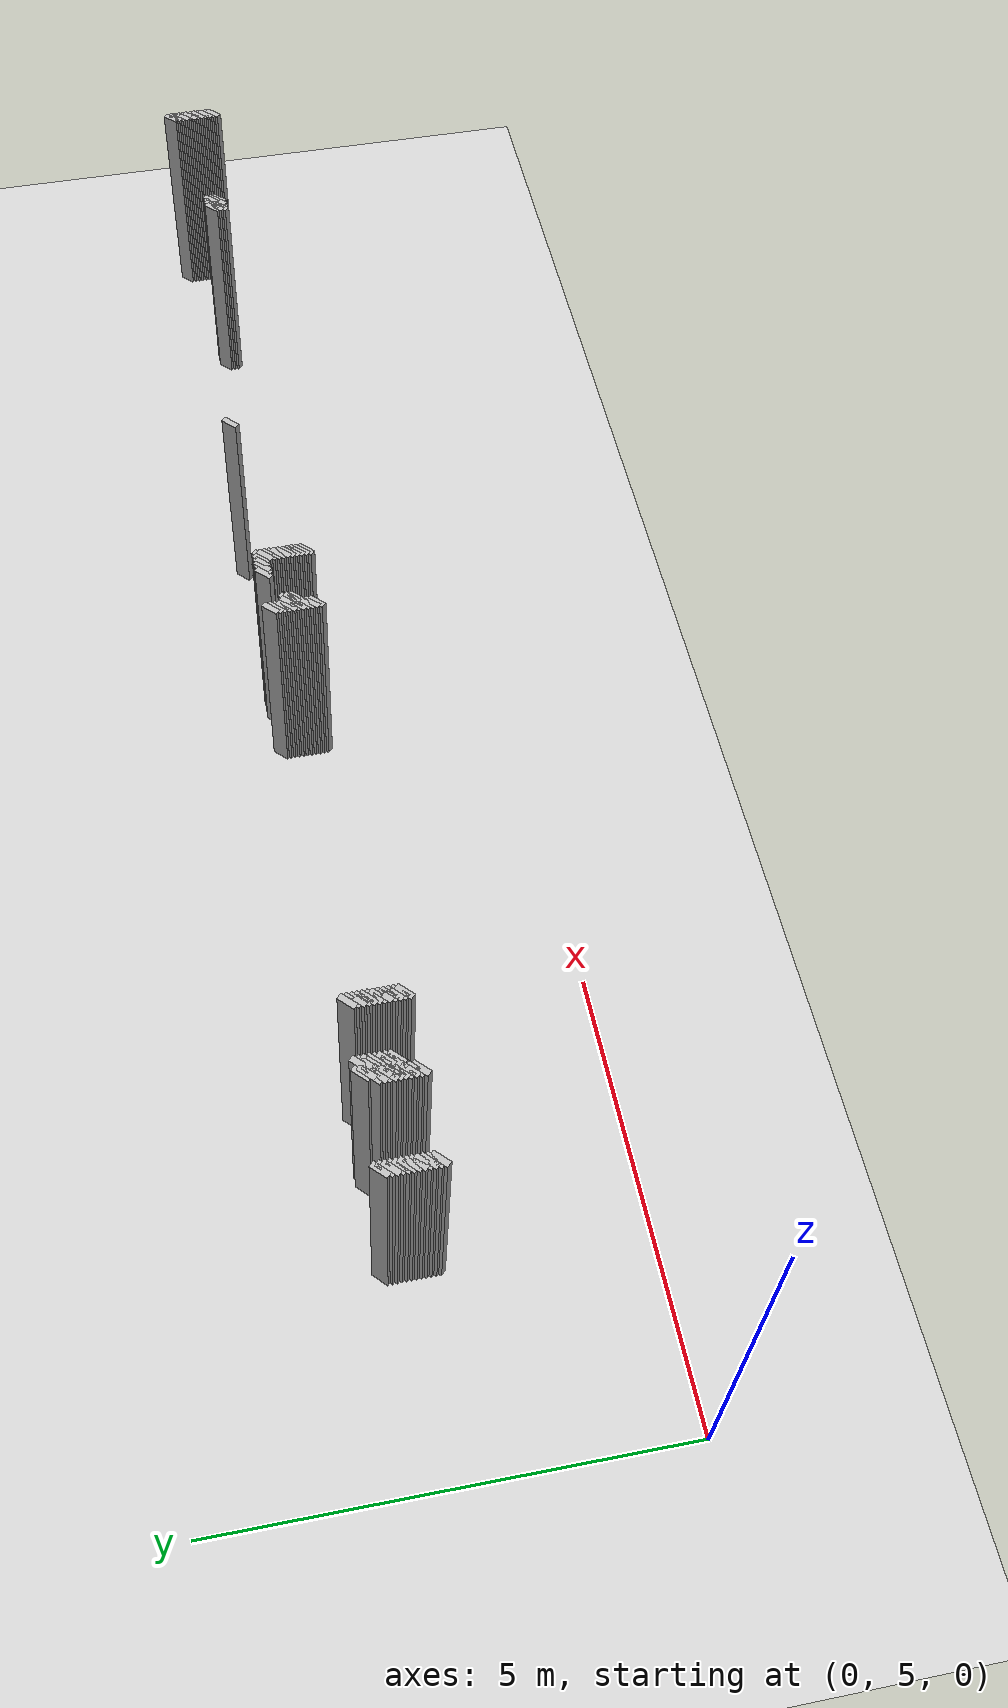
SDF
<sdf version="1.5">
 <world name="default">
  <include><uri>model://ground_plane</uri></include>
  <include><uri>model://sun</uri></include>
  <model name="grey_wall_2226">
   <static>1</static>
   <link name="link">
    <pose>11.450000000000001 7.8500000000000005  1.4 0 0 -0.7853981633974483</pose>
    <collision name="collision">
     <geometry><box><size>0.07071067811865576 .2  2.8</size></box></geometry>
    </collision>
    <visual name="visual">
     <cast_shadows>0</cast_shadows>
     <geometry><box><size>0.07071067811865576 .2  2.8</size></box></geometry>
    </visual>
   </link>
  </model>
  <model name="grey_wall_2227">
   <static>1</static>
   <link name="link">
    <pose>17.05 7.8500000000000005  1.4 0 0 -0.7853981633974838</pose>
    <collision name="collision">
     <geometry><box><size>0.07071067811865325 .2  2.8</size></box></geometry>
    </collision>
    <visual name="visual">
     <cast_shadows>0</cast_shadows>
     <geometry><box><size>0.07071067811865325 .2  2.8</size></box></geometry>
    </visual>
   </link>
  </model>
  <model name="grey_wall_2228">
   <static>1</static>
   <link name="link">
    <pose>2.15 7.800000000000001  1.4 0 0 -0.7853981633974572</pose>
    <collision name="collision">
     <geometry><box><size>0.07071067811865513 .2  2.8</size></box></geometry>
    </collision>
    <visual name="visual">
     <cast_shadows>0</cast_shadows>
     <geometry><box><size>0.07071067811865513 .2  2.8</size></box></geometry>
    </visual>
   </link>
  </model>
  <model name="grey_wall_2229">
   <static>1</static>
   <link name="link">
    <pose>3.1 7.800000000000001  1.4 0 0 -0.7853981633974572</pose>
    <collision name="collision">
     <geometry><box><size>0.07071067811865513 .2  2.8</size></box></geometry>
    </collision>
    <visual name="visual">
     <cast_shadows>0</cast_shadows>
     <geometry><box><size>0.07071067811865513 .2  2.8</size></box></geometry>
    </visual>
   </link>
  </model>
  <model name="grey_wall_2230">
   <static>1</static>
   <link name="link">
    <pose>3.2 7.800000000000001  1.4 0 0 -0.7853981633974572</pose>
    <collision name="collision">
     <geometry><box><size>0.07071067811865513 .2  2.8</size></box></geometry>
    </collision>
    <visual name="visual">
     <cast_shadows>0</cast_shadows>
     <geometry><box><size>0.07071067811865513 .2  2.8</size></box></geometry>
    </visual>
   </link>
  </model>
  <model name="grey_wall_2231">
   <static>1</static>
   <link name="link">
    <pose>3.85 7.800000000000001  1.4 0 0 -0.7853981633974572</pose>
    <collision name="collision">
     <geometry><box><size>0.07071067811865513 .2  2.8</size></box></geometry>
    </collision>
    <visual name="visual">
     <cast_shadows>0</cast_shadows>
     <geometry><box><size>0.07071067811865513 .2  2.8</size></box></geometry>
    </visual>
   </link>
  </model>
  <model name="grey_wall_2232">
   <static>1</static>
   <link name="link">
    <pose>8.65 7.800000000000001  1.4 0 0 -0.7853981633974483</pose>
    <collision name="collision">
     <geometry><box><size>0.07071067811865576 .2  2.8</size></box></geometry>
    </collision>
    <visual name="visual">
     <cast_shadows>0</cast_shadows>
     <geometry><box><size>0.07071067811865576 .2  2.8</size></box></geometry>
    </visual>
   </link>
  </model>
  <model name="grey_wall_2233">
   <static>1</static>
   <link name="link">
    <pose>9.15 7.800000000000001  1.4 0 0 -0.7853981633974483</pose>
    <collision name="collision">
     <geometry><box><size>0.07071067811865576 .2  2.8</size></box></geometry>
    </collision>
    <visual name="visual">
     <cast_shadows>0</cast_shadows>
     <geometry><box><size>0.07071067811865576 .2  2.8</size></box></geometry>
    </visual>
   </link>
  </model>
  <model name="grey_wall_2234">
   <static>1</static>
   <link name="link">
    <pose>9.200000000000001 7.800000000000001  1.4 0 0 -0.7853981633974483</pose>
    <collision name="collision">
     <geometry><box><size>0.07071067811865576 .2  2.8</size></box></geometry>
    </collision>
    <visual name="visual">
     <cast_shadows>0</cast_shadows>
     <geometry><box><size>0.07071067811865576 .2  2.8</size></box></geometry>
    </visual>
   </link>
  </model>
  <model name="grey_wall_2235">
   <static>1</static>
   <link name="link">
    <pose>9.25 7.800000000000001  1.4 0 0 -0.7853981633974483</pose>
    <collision name="collision">
     <geometry><box><size>0.07071067811865576 .2  2.8</size></box></geometry>
    </collision>
    <visual name="visual">
     <cast_shadows>0</cast_shadows>
     <geometry><box><size>0.07071067811865576 .2  2.8</size></box></geometry>
    </visual>
   </link>
  </model>
  <model name="grey_wall_2236">
   <static>1</static>
   <link name="link">
    <pose>9.3 7.800000000000001  1.4 0 0 -0.7853981633974483</pose>
    <collision name="collision">
     <geometry><box><size>0.07071067811865576 .2  2.8</size></box></geometry>
    </collision>
    <visual name="visual">
     <cast_shadows>0</cast_shadows>
     <geometry><box><size>0.07071067811865576 .2  2.8</size></box></geometry>
    </visual>
   </link>
  </model>
  <model name="grey_wall_2237">
   <static>1</static>
   <link name="link">
    <pose>9.35 7.800000000000001  1.4 0 0 -0.7853981633974483</pose>
    <collision name="collision">
     <geometry><box><size>0.07071067811865576 .2  2.8</size></box></geometry>
    </collision>
    <visual name="visual">
     <cast_shadows>0</cast_shadows>
     <geometry><box><size>0.07071067811865576 .2  2.8</size></box></geometry>
    </visual>
   </link>
  </model>
  <model name="grey_wall_2238">
   <static>1</static>
   <link name="link">
    <pose>9.4 7.800000000000001  1.4 0 0 -0.7853981633974483</pose>
    <collision name="collision">
     <geometry><box><size>0.07071067811865576 .2  2.8</size></box></geometry>
    </collision>
    <visual name="visual">
     <cast_shadows>0</cast_shadows>
     <geometry><box><size>0.07071067811865576 .2  2.8</size></box></geometry>
    </visual>
   </link>
  </model>
  <model name="grey_wall_2239">
   <static>1</static>
   <link name="link">
    <pose>17.05 7.800000000000001  1.4 0 0 -0.7853981633974838</pose>
    <collision name="collision">
     <geometry><box><size>0.07071067811865325 .2  2.8</size></box></geometry>
    </collision>
    <visual name="visual">
     <cast_shadows>0</cast_shadows>
     <geometry><box><size>0.07071067811865325 .2  2.8</size></box></geometry>
    </visual>
   </link>
  </model>
  <model name="grey_wall_2240">
   <static>1</static>
   <link name="link">
    <pose>2.15 7.75  1.4 0 0 -0.7853981633974572</pose>
    <collision name="collision">
     <geometry><box><size>0.07071067811865513 .2  2.8</size></box></geometry>
    </collision>
    <visual name="visual">
     <cast_shadows>0</cast_shadows>
     <geometry><box><size>0.07071067811865513 .2  2.8</size></box></geometry>
    </visual>
   </link>
  </model>
  <model name="grey_wall_2241">
   <static>1</static>
   <link name="link">
    <pose>3.1 7.75  1.4 0 0 -0.7853981633974572</pose>
    <collision name="collision">
     <geometry><box><size>0.07071067811865513 .2  2.8</size></box></geometry>
    </collision>
    <visual name="visual">
     <cast_shadows>0</cast_shadows>
     <geometry><box><size>0.07071067811865513 .2  2.8</size></box></geometry>
    </visual>
   </link>
  </model>
  <model name="grey_wall_2242">
   <static>1</static>
   <link name="link">
    <pose>3.2 7.75  1.4 0 0 -0.7853981633974572</pose>
    <collision name="collision">
     <geometry><box><size>0.07071067811865513 .2  2.8</size></box></geometry>
    </collision>
    <visual name="visual">
     <cast_shadows>0</cast_shadows>
     <geometry><box><size>0.07071067811865513 .2  2.8</size></box></geometry>
    </visual>
   </link>
  </model>
  <model name="grey_wall_2243">
   <static>1</static>
   <link name="link">
    <pose>3.85 7.75  1.4 0 0 -0.7853981633974572</pose>
    <collision name="collision">
     <geometry><box><size>0.07071067811865513 .2  2.8</size></box></geometry>
    </collision>
    <visual name="visual">
     <cast_shadows>0</cast_shadows>
     <geometry><box><size>0.07071067811865513 .2  2.8</size></box></geometry>
    </visual>
   </link>
  </model>
  <model name="grey_wall_2244">
   <static>1</static>
   <link name="link">
    <pose>8.65 7.75  1.4 0 0 -0.7853981633974483</pose>
    <collision name="collision">
     <geometry><box><size>0.07071067811865576 .2  2.8</size></box></geometry>
    </collision>
    <visual name="visual">
     <cast_shadows>0</cast_shadows>
     <geometry><box><size>0.07071067811865576 .2  2.8</size></box></geometry>
    </visual>
   </link>
  </model>
  <model name="grey_wall_2245">
   <static>1</static>
   <link name="link">
    <pose>9.4 7.75  1.4 0 0 -0.7853981633974483</pose>
    <collision name="collision">
     <geometry><box><size>0.07071067811865576 .2  2.8</size></box></geometry>
    </collision>
    <visual name="visual">
     <cast_shadows>0</cast_shadows>
     <geometry><box><size>0.07071067811865576 .2  2.8</size></box></geometry>
    </visual>
   </link>
  </model>
  <model name="grey_wall_2246">
   <static>1</static>
   <link name="link">
    <pose>17.05 7.75  1.4 0 0 -0.7853981633974838</pose>
    <collision name="collision">
     <geometry><box><size>0.07071067811865325 .2  2.8</size></box></geometry>
    </collision>
    <visual name="visual">
     <cast_shadows>0</cast_shadows>
     <geometry><box><size>0.07071067811865325 .2  2.8</size></box></geometry>
    </visual>
   </link>
  </model>
  <model name="grey_wall_2247">
   <static>1</static>
   <link name="link">
    <pose>2.15 7.7  1.4 0 0 -0.7853981633974572</pose>
    <collision name="collision">
     <geometry><box><size>0.07071067811865513 .2  2.8</size></box></geometry>
    </collision>
    <visual name="visual">
     <cast_shadows>0</cast_shadows>
     <geometry><box><size>0.07071067811865513 .2  2.8</size></box></geometry>
    </visual>
   </link>
  </model>
  <model name="grey_wall_2248">
   <static>1</static>
   <link name="link">
    <pose>3.0500000000000003 7.7  1.4 0 0 -0.7853981633974572</pose>
    <collision name="collision">
     <geometry><box><size>0.07071067811865513 .2  2.8</size></box></geometry>
    </collision>
    <visual name="visual">
     <cast_shadows>0</cast_shadows>
     <geometry><box><size>0.07071067811865513 .2  2.8</size></box></geometry>
    </visual>
   </link>
  </model>
  <model name="grey_wall_2249">
   <static>1</static>
   <link name="link">
    <pose>3.1 7.7  1.4 0 0 -0.7853981633974572</pose>
    <collision name="collision">
     <geometry><box><size>0.07071067811865513 .2  2.8</size></box></geometry>
    </collision>
    <visual name="visual">
     <cast_shadows>0</cast_shadows>
     <geometry><box><size>0.07071067811865513 .2  2.8</size></box></geometry>
    </visual>
   </link>
  </model>
  <model name="grey_wall_2250">
   <static>1</static>
   <link name="link">
    <pose>3.2 7.7  1.4 0 0 -0.7853981633974572</pose>
    <collision name="collision">
     <geometry><box><size>0.07071067811865513 .2  2.8</size></box></geometry>
    </collision>
    <visual name="visual">
     <cast_shadows>0</cast_shadows>
     <geometry><box><size>0.07071067811865513 .2  2.8</size></box></geometry>
    </visual>
   </link>
  </model>
  <model name="grey_wall_2251">
   <static>1</static>
   <link name="link">
    <pose>3.85 7.7  1.4 0 0 -0.7853981633974572</pose>
    <collision name="collision">
     <geometry><box><size>0.07071067811865513 .2  2.8</size></box></geometry>
    </collision>
    <visual name="visual">
     <cast_shadows>0</cast_shadows>
     <geometry><box><size>0.07071067811865513 .2  2.8</size></box></geometry>
    </visual>
   </link>
  </model>
  <model name="grey_wall_2252">
   <static>1</static>
   <link name="link">
    <pose>8.65 7.7  1.4 0 0 -0.7853981633974483</pose>
    <collision name="collision">
     <geometry><box><size>0.07071067811865576 .2  2.8</size></box></geometry>
    </collision>
    <visual name="visual">
     <cast_shadows>0</cast_shadows>
     <geometry><box><size>0.07071067811865576 .2  2.8</size></box></geometry>
    </visual>
   </link>
  </model>
  <model name="grey_wall_2253">
   <static>1</static>
   <link name="link">
    <pose>9.4 7.7  1.4 0 0 -0.7853981633974483</pose>
    <collision name="collision">
     <geometry><box><size>0.07071067811865576 .2  2.8</size></box></geometry>
    </collision>
    <visual name="visual">
     <cast_shadows>0</cast_shadows>
     <geometry><box><size>0.07071067811865576 .2  2.8</size></box></geometry>
    </visual>
   </link>
  </model>
  <model name="grey_wall_2254">
   <static>1</static>
   <link name="link">
    <pose>17.05 7.7  1.4 0 0 -0.7853981633974838</pose>
    <collision name="collision">
     <geometry><box><size>0.07071067811865325 .2  2.8</size></box></geometry>
    </collision>
    <visual name="visual">
     <cast_shadows>0</cast_shadows>
     <geometry><box><size>0.07071067811865325 .2  2.8</size></box></geometry>
    </visual>
   </link>
  </model>
  <model name="grey_wall_2255">
   <static>1</static>
   <link name="link">
    <pose>2.15 7.65  1.4 0 0 -0.7853981633974572</pose>
    <collision name="collision">
     <geometry><box><size>0.07071067811865513 .2  2.8</size></box></geometry>
    </collision>
    <visual name="visual">
     <cast_shadows>0</cast_shadows>
     <geometry><box><size>0.07071067811865513 .2  2.8</size></box></geometry>
    </visual>
   </link>
  </model>
  <model name="grey_wall_2256">
   <static>1</static>
   <link name="link">
    <pose>3.0500000000000003 7.65  1.4 0 0 -0.7853981633974572</pose>
    <collision name="collision">
     <geometry><box><size>0.07071067811865513 .2  2.8</size></box></geometry>
    </collision>
    <visual name="visual">
     <cast_shadows>0</cast_shadows>
     <geometry><box><size>0.07071067811865513 .2  2.8</size></box></geometry>
    </visual>
   </link>
  </model>
  <model name="grey_wall_2257">
   <static>1</static>
   <link name="link">
    <pose>3.1 7.65  1.4 0 0 -0.7853981633974572</pose>
    <collision name="collision">
     <geometry><box><size>0.07071067811865513 .2  2.8</size></box></geometry>
    </collision>
    <visual name="visual">
     <cast_shadows>0</cast_shadows>
     <geometry><box><size>0.07071067811865513 .2  2.8</size></box></geometry>
    </visual>
   </link>
  </model>
  <model name="grey_wall_2258">
   <static>1</static>
   <link name="link">
    <pose>3.2 7.65  1.4 0 0 -0.7853981633974572</pose>
    <collision name="collision">
     <geometry><box><size>0.07071067811865513 .2  2.8</size></box></geometry>
    </collision>
    <visual name="visual">
     <cast_shadows>0</cast_shadows>
     <geometry><box><size>0.07071067811865513 .2  2.8</size></box></geometry>
    </visual>
   </link>
  </model>
  <model name="grey_wall_2259">
   <static>1</static>
   <link name="link">
    <pose>3.85 7.65  1.4 0 0 -0.7853981633974572</pose>
    <collision name="collision">
     <geometry><box><size>0.07071067811865513 .2  2.8</size></box></geometry>
    </collision>
    <visual name="visual">
     <cast_shadows>0</cast_shadows>
     <geometry><box><size>0.07071067811865513 .2  2.8</size></box></geometry>
    </visual>
   </link>
  </model>
  <model name="grey_wall_2260">
   <static>1</static>
   <link name="link">
    <pose>8.65 7.65  1.4 0 0 -0.7853981633974483</pose>
    <collision name="collision">
     <geometry><box><size>0.07071067811865576 .2  2.8</size></box></geometry>
    </collision>
    <visual name="visual">
     <cast_shadows>0</cast_shadows>
     <geometry><box><size>0.07071067811865576 .2  2.8</size></box></geometry>
    </visual>
   </link>
  </model>
  <model name="grey_wall_2261">
   <static>1</static>
   <link name="link">
    <pose>9.4 7.65  1.4 0 0 -0.7853981633974483</pose>
    <collision name="collision">
     <geometry><box><size>0.07071067811865576 .2  2.8</size></box></geometry>
    </collision>
    <visual name="visual">
     <cast_shadows>0</cast_shadows>
     <geometry><box><size>0.07071067811865576 .2  2.8</size></box></geometry>
    </visual>
   </link>
  </model>
  <model name="grey_wall_2262">
   <static>1</static>
   <link name="link">
    <pose>17.05 7.65  1.4 0 0 -0.7853981633974838</pose>
    <collision name="collision">
     <geometry><box><size>0.07071067811865325 .2  2.8</size></box></geometry>
    </collision>
    <visual name="visual">
     <cast_shadows>0</cast_shadows>
     <geometry><box><size>0.07071067811865325 .2  2.8</size></box></geometry>
    </visual>
   </link>
  </model>
  <model name="grey_wall_2263">
   <static>1</static>
   <link name="link">
    <pose>2.15 7.6000000000000005  1.4 0 0 -0.7853981633974572</pose>
    <collision name="collision">
     <geometry><box><size>0.07071067811865513 .2  2.8</size></box></geometry>
    </collision>
    <visual name="visual">
     <cast_shadows>0</cast_shadows>
     <geometry><box><size>0.07071067811865513 .2  2.8</size></box></geometry>
    </visual>
   </link>
  </model>
  <model name="grey_wall_2264">
   <static>1</static>
   <link name="link">
    <pose>3.0500000000000003 7.6000000000000005  1.4 0 0 -0.7853981633974572</pose>
    <collision name="collision">
     <geometry><box><size>0.07071067811865513 .2  2.8</size></box></geometry>
    </collision>
    <visual name="visual">
     <cast_shadows>0</cast_shadows>
     <geometry><box><size>0.07071067811865513 .2  2.8</size></box></geometry>
    </visual>
   </link>
  </model>
  <model name="grey_wall_2265">
   <static>1</static>
   <link name="link">
    <pose>3.1 7.6000000000000005  1.4 0 0 -0.7853981633974572</pose>
    <collision name="collision">
     <geometry><box><size>0.07071067811865513 .2  2.8</size></box></geometry>
    </collision>
    <visual name="visual">
     <cast_shadows>0</cast_shadows>
     <geometry><box><size>0.07071067811865513 .2  2.8</size></box></geometry>
    </visual>
   </link>
  </model>
  <model name="grey_wall_2266">
   <static>1</static>
   <link name="link">
    <pose>3.2 7.6000000000000005  1.4 0 0 -0.7853981633974572</pose>
    <collision name="collision">
     <geometry><box><size>0.07071067811865513 .2  2.8</size></box></geometry>
    </collision>
    <visual name="visual">
     <cast_shadows>0</cast_shadows>
     <geometry><box><size>0.07071067811865513 .2  2.8</size></box></geometry>
    </visual>
   </link>
  </model>
  <model name="grey_wall_2267">
   <static>1</static>
   <link name="link">
    <pose>3.85 7.6000000000000005  1.4 0 0 -0.7853981633974572</pose>
    <collision name="collision">
     <geometry><box><size>0.07071067811865513 .2  2.8</size></box></geometry>
    </collision>
    <visual name="visual">
     <cast_shadows>0</cast_shadows>
     <geometry><box><size>0.07071067811865513 .2  2.8</size></box></geometry>
    </visual>
   </link>
  </model>
  <model name="grey_wall_2268">
   <static>1</static>
   <link name="link">
    <pose>8.65 7.6000000000000005  1.4 0 0 -0.7853981633974483</pose>
    <collision name="collision">
     <geometry><box><size>0.07071067811865576 .2  2.8</size></box></geometry>
    </collision>
    <visual name="visual">
     <cast_shadows>0</cast_shadows>
     <geometry><box><size>0.07071067811865576 .2  2.8</size></box></geometry>
    </visual>
   </link>
  </model>
  <model name="grey_wall_2269">
   <static>1</static>
   <link name="link">
    <pose>8.700000000000001 7.6000000000000005  1.4 0 0 -0.7853981633974483</pose>
    <collision name="collision">
     <geometry><box><size>0.07071067811865576 .2  2.8</size></box></geometry>
    </collision>
    <visual name="visual">
     <cast_shadows>0</cast_shadows>
     <geometry><box><size>0.07071067811865576 .2  2.8</size></box></geometry>
    </visual>
   </link>
  </model>
  <model name="grey_wall_2270">
   <static>1</static>
   <link name="link">
    <pose>8.75 7.6000000000000005  1.4 0 0 -0.7853981633974483</pose>
    <collision name="collision">
     <geometry><box><size>0.07071067811865576 .2  2.8</size></box></geometry>
    </collision>
    <visual name="visual">
     <cast_shadows>0</cast_shadows>
     <geometry><box><size>0.07071067811865576 .2  2.8</size></box></geometry>
    </visual>
   </link>
  </model>
  <model name="grey_wall_2271">
   <static>1</static>
   <link name="link">
    <pose>9.4 7.6000000000000005  1.4 0 0 -0.7853981633974483</pose>
    <collision name="collision">
     <geometry><box><size>0.07071067811865576 .2  2.8</size></box></geometry>
    </collision>
    <visual name="visual">
     <cast_shadows>0</cast_shadows>
     <geometry><box><size>0.07071067811865576 .2  2.8</size></box></geometry>
    </visual>
   </link>
  </model>
  <model name="grey_wall_2272">
   <static>1</static>
   <link name="link">
    <pose>17.05 7.6000000000000005  1.4 0 0 -0.7853981633974838</pose>
    <collision name="collision">
     <geometry><box><size>0.07071067811865325 .2  2.8</size></box></geometry>
    </collision>
    <visual name="visual">
     <cast_shadows>0</cast_shadows>
     <geometry><box><size>0.07071067811865325 .2  2.8</size></box></geometry>
    </visual>
   </link>
  </model>
  <model name="grey_wall_2273">
   <static>1</static>
   <link name="link">
    <pose>2.15 7.550000000000001  1.4 0 0 -0.7853981633974572</pose>
    <collision name="collision">
     <geometry><box><size>0.07071067811865513 .2  2.8</size></box></geometry>
    </collision>
    <visual name="visual">
     <cast_shadows>0</cast_shadows>
     <geometry><box><size>0.07071067811865513 .2  2.8</size></box></geometry>
    </visual>
   </link>
  </model>
  <model name="grey_wall_2274">
   <static>1</static>
   <link name="link">
    <pose>3.0500000000000003 7.550000000000001  1.4 0 0 -0.7853981633974572</pose>
    <collision name="collision">
     <geometry><box><size>0.07071067811865513 .2  2.8</size></box></geometry>
    </collision>
    <visual name="visual">
     <cast_shadows>0</cast_shadows>
     <geometry><box><size>0.07071067811865513 .2  2.8</size></box></geometry>
    </visual>
   </link>
  </model>
  <model name="grey_wall_2275">
   <static>1</static>
   <link name="link">
    <pose>3.1 7.550000000000001  1.4 0 0 -0.7853981633974572</pose>
    <collision name="collision">
     <geometry><box><size>0.07071067811865513 .2  2.8</size></box></geometry>
    </collision>
    <visual name="visual">
     <cast_shadows>0</cast_shadows>
     <geometry><box><size>0.07071067811865513 .2  2.8</size></box></geometry>
    </visual>
   </link>
  </model>
  <model name="grey_wall_2276">
   <static>1</static>
   <link name="link">
    <pose>3.2 7.550000000000001  1.4 0 0 -0.7853981633974572</pose>
    <collision name="collision">
     <geometry><box><size>0.07071067811865513 .2  2.8</size></box></geometry>
    </collision>
    <visual name="visual">
     <cast_shadows>0</cast_shadows>
     <geometry><box><size>0.07071067811865513 .2  2.8</size></box></geometry>
    </visual>
   </link>
  </model>
  <model name="grey_wall_2277">
   <static>1</static>
   <link name="link">
    <pose>3.85 7.550000000000001  1.4 0 0 -0.7853981633974572</pose>
    <collision name="collision">
     <geometry><box><size>0.07071067811865513 .2  2.8</size></box></geometry>
    </collision>
    <visual name="visual">
     <cast_shadows>0</cast_shadows>
     <geometry><box><size>0.07071067811865513 .2  2.8</size></box></geometry>
    </visual>
   </link>
  </model>
  <model name="grey_wall_2278">
   <static>1</static>
   <link name="link">
    <pose>8.65 7.550000000000001  1.4 0 0 -0.7853981633974483</pose>
    <collision name="collision">
     <geometry><box><size>0.07071067811865576 .2  2.8</size></box></geometry>
    </collision>
    <visual name="visual">
     <cast_shadows>0</cast_shadows>
     <geometry><box><size>0.07071067811865576 .2  2.8</size></box></geometry>
    </visual>
   </link>
  </model>
  <model name="grey_wall_2279">
   <static>1</static>
   <link name="link">
    <pose>8.75 7.550000000000001  1.4 0 0 -0.7853981633974483</pose>
    <collision name="collision">
     <geometry><box><size>0.07071067811865576 .2  2.8</size></box></geometry>
    </collision>
    <visual name="visual">
     <cast_shadows>0</cast_shadows>
     <geometry><box><size>0.07071067811865576 .2  2.8</size></box></geometry>
    </visual>
   </link>
  </model>
  <model name="grey_wall_2280">
   <static>1</static>
   <link name="link">
    <pose>9.4 7.550000000000001  1.4 0 0 -0.7853981633974483</pose>
    <collision name="collision">
     <geometry><box><size>0.07071067811865576 .2  2.8</size></box></geometry>
    </collision>
    <visual name="visual">
     <cast_shadows>0</cast_shadows>
     <geometry><box><size>0.07071067811865576 .2  2.8</size></box></geometry>
    </visual>
   </link>
  </model>
  <model name="grey_wall_2281">
   <static>1</static>
   <link name="link">
    <pose>15.200000000000001 7.550000000000001  1.4 0 0 -0.7853981633974483</pose>
    <collision name="collision">
     <geometry><box><size>0.07071067811865576 .2  2.8</size></box></geometry>
    </collision>
    <visual name="visual">
     <cast_shadows>0</cast_shadows>
     <geometry><box><size>0.07071067811865576 .2  2.8</size></box></geometry>
    </visual>
   </link>
  </model>
  <model name="grey_wall_2282">
   <static>1</static>
   <link name="link">
    <pose>15.25 7.550000000000001  1.4 0 0 -0.7853981633974483</pose>
    <collision name="collision">
     <geometry><box><size>0.07071067811865576 .2  2.8</size></box></geometry>
    </collision>
    <visual name="visual">
     <cast_shadows>0</cast_shadows>
     <geometry><box><size>0.07071067811865576 .2  2.8</size></box></geometry>
    </visual>
   </link>
  </model>
  <model name="grey_wall_2283">
   <static>1</static>
   <link name="link">
    <pose>15.3 7.550000000000001  1.4 0 0 -0.7853981633974483</pose>
    <collision name="collision">
     <geometry><box><size>0.07071067811865576 .2  2.8</size></box></geometry>
    </collision>
    <visual name="visual">
     <cast_shadows>0</cast_shadows>
     <geometry><box><size>0.07071067811865576 .2  2.8</size></box></geometry>
    </visual>
   </link>
  </model>
  <model name="grey_wall_2284">
   <static>1</static>
   <link name="link">
    <pose>15.350000000000001 7.550000000000001  1.4 0 0 -0.7853981633974483</pose>
    <collision name="collision">
     <geometry><box><size>0.07071067811865576 .2  2.8</size></box></geometry>
    </collision>
    <visual name="visual">
     <cast_shadows>0</cast_shadows>
     <geometry><box><size>0.07071067811865576 .2  2.8</size></box></geometry>
    </visual>
   </link>
  </model>
  <model name="grey_wall_2285">
   <static>1</static>
   <link name="link">
    <pose>17.05 7.550000000000001  1.4 0 0 -0.7853981633974838</pose>
    <collision name="collision">
     <geometry><box><size>0.07071067811865325 .2  2.8</size></box></geometry>
    </collision>
    <visual name="visual">
     <cast_shadows>0</cast_shadows>
     <geometry><box><size>0.07071067811865325 .2  2.8</size></box></geometry>
    </visual>
   </link>
  </model>
  <model name="grey_wall_2286">
   <static>1</static>
   <link name="link">
    <pose>2.15 7.5  1.4 0 0 -0.7853981633974572</pose>
    <collision name="collision">
     <geometry><box><size>0.07071067811865513 .2  2.8</size></box></geometry>
    </collision>
    <visual name="visual">
     <cast_shadows>0</cast_shadows>
     <geometry><box><size>0.07071067811865513 .2  2.8</size></box></geometry>
    </visual>
   </link>
  </model>
  <model name="grey_wall_2287">
   <static>1</static>
   <link name="link">
    <pose>3.0500000000000003 7.5  1.4 0 0 -0.7853981633974572</pose>
    <collision name="collision">
     <geometry><box><size>0.07071067811865513 .2  2.8</size></box></geometry>
    </collision>
    <visual name="visual">
     <cast_shadows>0</cast_shadows>
     <geometry><box><size>0.07071067811865513 .2  2.8</size></box></geometry>
    </visual>
   </link>
  </model>
  <model name="grey_wall_2288">
   <static>1</static>
   <link name="link">
    <pose>3.1 7.5  1.4 0 0 -0.7853981633974572</pose>
    <collision name="collision">
     <geometry><box><size>0.07071067811865513 .2  2.8</size></box></geometry>
    </collision>
    <visual name="visual">
     <cast_shadows>0</cast_shadows>
     <geometry><box><size>0.07071067811865513 .2  2.8</size></box></geometry>
    </visual>
   </link>
  </model>
  <model name="grey_wall_2289">
   <static>1</static>
   <link name="link">
    <pose>3.2 7.5  1.4 0 0 -0.7853981633974572</pose>
    <collision name="collision">
     <geometry><box><size>0.07071067811865513 .2  2.8</size></box></geometry>
    </collision>
    <visual name="visual">
     <cast_shadows>0</cast_shadows>
     <geometry><box><size>0.07071067811865513 .2  2.8</size></box></geometry>
    </visual>
   </link>
  </model>
  <model name="grey_wall_2290">
   <static>1</static>
   <link name="link">
    <pose>3.85 7.5  1.4 0 0 -0.7853981633974572</pose>
    <collision name="collision">
     <geometry><box><size>0.07071067811865513 .2  2.8</size></box></geometry>
    </collision>
    <visual name="visual">
     <cast_shadows>0</cast_shadows>
     <geometry><box><size>0.07071067811865513 .2  2.8</size></box></geometry>
    </visual>
   </link>
  </model>
  <model name="grey_wall_2291">
   <static>1</static>
   <link name="link">
    <pose>8.65 7.5  1.4 0 0 -0.7853981633974483</pose>
    <collision name="collision">
     <geometry><box><size>0.07071067811865576 .2  2.8</size></box></geometry>
    </collision>
    <visual name="visual">
     <cast_shadows>0</cast_shadows>
     <geometry><box><size>0.07071067811865576 .2  2.8</size></box></geometry>
    </visual>
   </link>
  </model>
  <model name="grey_wall_2292">
   <static>1</static>
   <link name="link">
    <pose>8.700000000000001 7.5  1.4 0 0 -0.7853981633974483</pose>
    <collision name="collision">
     <geometry><box><size>0.07071067811865576 .2  2.8</size></box></geometry>
    </collision>
    <visual name="visual">
     <cast_shadows>0</cast_shadows>
     <geometry><box><size>0.07071067811865576 .2  2.8</size></box></geometry>
    </visual>
   </link>
  </model>
  <model name="grey_wall_2293">
   <static>1</static>
   <link name="link">
    <pose>8.75 7.5  1.4 0 0 -0.7853981633974483</pose>
    <collision name="collision">
     <geometry><box><size>0.07071067811865576 .2  2.8</size></box></geometry>
    </collision>
    <visual name="visual">
     <cast_shadows>0</cast_shadows>
     <geometry><box><size>0.07071067811865576 .2  2.8</size></box></geometry>
    </visual>
   </link>
  </model>
  <model name="grey_wall_2294">
   <static>1</static>
   <link name="link">
    <pose>9.4 7.5  1.4 0 0 -0.7853981633974483</pose>
    <collision name="collision">
     <geometry><box><size>0.07071067811865576 .2  2.8</size></box></geometry>
    </collision>
    <visual name="visual">
     <cast_shadows>0</cast_shadows>
     <geometry><box><size>0.07071067811865576 .2  2.8</size></box></geometry>
    </visual>
   </link>
  </model>
  <model name="grey_wall_2295">
   <static>1</static>
   <link name="link">
    <pose>15.200000000000001 7.5  1.4 0 0 -0.7853981633974483</pose>
    <collision name="collision">
     <geometry><box><size>0.07071067811865576 .2  2.8</size></box></geometry>
    </collision>
    <visual name="visual">
     <cast_shadows>0</cast_shadows>
     <geometry><box><size>0.07071067811865576 .2  2.8</size></box></geometry>
    </visual>
   </link>
  </model>
  <model name="grey_wall_2296">
   <static>1</static>
   <link name="link">
    <pose>15.350000000000001 7.5  1.4 0 0 -0.7853981633974483</pose>
    <collision name="collision">
     <geometry><box><size>0.07071067811865576 .2  2.8</size></box></geometry>
    </collision>
    <visual name="visual">
     <cast_shadows>0</cast_shadows>
     <geometry><box><size>0.07071067811865576 .2  2.8</size></box></geometry>
    </visual>
   </link>
  </model>
  <model name="grey_wall_2297">
   <static>1</static>
   <link name="link">
    <pose>17.05 7.5  1.4 0 0 -0.7853981633974838</pose>
    <collision name="collision">
     <geometry><box><size>0.07071067811865325 .2  2.8</size></box></geometry>
    </collision>
    <visual name="visual">
     <cast_shadows>0</cast_shadows>
     <geometry><box><size>0.07071067811865325 .2  2.8</size></box></geometry>
    </visual>
   </link>
  </model>
  <model name="grey_wall_2298">
   <static>1</static>
   <link name="link">
    <pose>2.15 7.45  1.4 0 0 -0.7853981633974572</pose>
    <collision name="collision">
     <geometry><box><size>0.07071067811865513 .2  2.8</size></box></geometry>
    </collision>
    <visual name="visual">
     <cast_shadows>0</cast_shadows>
     <geometry><box><size>0.07071067811865513 .2  2.8</size></box></geometry>
    </visual>
   </link>
  </model>
  <model name="grey_wall_2299">
   <static>1</static>
   <link name="link">
    <pose>3.0500000000000003 7.45  1.4 0 0 -0.7853981633974572</pose>
    <collision name="collision">
     <geometry><box><size>0.07071067811865513 .2  2.8</size></box></geometry>
    </collision>
    <visual name="visual">
     <cast_shadows>0</cast_shadows>
     <geometry><box><size>0.07071067811865513 .2  2.8</size></box></geometry>
    </visual>
   </link>
  </model>
  <model name="grey_wall_2300">
   <static>1</static>
   <link name="link">
    <pose>3.1 7.45  1.4 0 0 -0.7853981633974572</pose>
    <collision name="collision">
     <geometry><box><size>0.07071067811865513 .2  2.8</size></box></geometry>
    </collision>
    <visual name="visual">
     <cast_shadows>0</cast_shadows>
     <geometry><box><size>0.07071067811865513 .2  2.8</size></box></geometry>
    </visual>
   </link>
  </model>
  <model name="grey_wall_2301">
   <static>1</static>
   <link name="link">
    <pose>3.1500000000000004 7.45  1.4 0 0 -0.7853981633974572</pose>
    <collision name="collision">
     <geometry><box><size>0.07071067811865513 .2  2.8</size></box></geometry>
    </collision>
    <visual name="visual">
     <cast_shadows>0</cast_shadows>
     <geometry><box><size>0.07071067811865513 .2  2.8</size></box></geometry>
    </visual>
   </link>
  </model>
  <model name="grey_wall_2302">
   <static>1</static>
   <link name="link">
    <pose>3.2 7.45  1.4 0 0 -0.7853981633974572</pose>
    <collision name="collision">
     <geometry><box><size>0.07071067811865513 .2  2.8</size></box></geometry>
    </collision>
    <visual name="visual">
     <cast_shadows>0</cast_shadows>
     <geometry><box><size>0.07071067811865513 .2  2.8</size></box></geometry>
    </visual>
   </link>
  </model>
  <model name="grey_wall_2303">
   <static>1</static>
   <link name="link">
    <pose>3.85 7.45  1.4 0 0 -0.7853981633974572</pose>
    <collision name="collision">
     <geometry><box><size>0.07071067811865513 .2  2.8</size></box></geometry>
    </collision>
    <visual name="visual">
     <cast_shadows>0</cast_shadows>
     <geometry><box><size>0.07071067811865513 .2  2.8</size></box></geometry>
    </visual>
   </link>
  </model>
  <model name="grey_wall_2304">
   <static>1</static>
   <link name="link">
    <pose>8.65 7.45  1.4 0 0 -0.7853981633974483</pose>
    <collision name="collision">
     <geometry><box><size>0.07071067811865576 .2  2.8</size></box></geometry>
    </collision>
    <visual name="visual">
     <cast_shadows>0</cast_shadows>
     <geometry><box><size>0.07071067811865576 .2  2.8</size></box></geometry>
    </visual>
   </link>
  </model>
  <model name="grey_wall_2305">
   <static>1</static>
   <link name="link">
    <pose>9.4 7.45  1.4 0 0 -0.7853981633974483</pose>
    <collision name="collision">
     <geometry><box><size>0.07071067811865576 .2  2.8</size></box></geometry>
    </collision>
    <visual name="visual">
     <cast_shadows>0</cast_shadows>
     <geometry><box><size>0.07071067811865576 .2  2.8</size></box></geometry>
    </visual>
   </link>
  </model>
  <model name="grey_wall_2306">
   <static>1</static>
   <link name="link">
    <pose>15.200000000000001 7.45  1.4 0 0 -0.7853981633974483</pose>
    <collision name="collision">
     <geometry><box><size>0.07071067811865576 .2  2.8</size></box></geometry>
    </collision>
    <visual name="visual">
     <cast_shadows>0</cast_shadows>
     <geometry><box><size>0.07071067811865576 .2  2.8</size></box></geometry>
    </visual>
   </link>
  </model>
  <model name="grey_wall_2307">
   <static>1</static>
   <link name="link">
    <pose>15.25 7.45  1.4 0 0 -0.7853981633974483</pose>
    <collision name="collision">
     <geometry><box><size>0.07071067811865576 .2  2.8</size></box></geometry>
    </collision>
    <visual name="visual">
     <cast_shadows>0</cast_shadows>
     <geometry><box><size>0.07071067811865576 .2  2.8</size></box></geometry>
    </visual>
   </link>
  </model>
  <model name="grey_wall_2308">
   <static>1</static>
   <link name="link">
    <pose>15.3 7.45  1.4 0 0 -0.7853981633974483</pose>
    <collision name="collision">
     <geometry><box><size>0.07071067811865576 .2  2.8</size></box></geometry>
    </collision>
    <visual name="visual">
     <cast_shadows>0</cast_shadows>
     <geometry><box><size>0.07071067811865576 .2  2.8</size></box></geometry>
    </visual>
   </link>
  </model>
  <model name="grey_wall_2309">
   <static>1</static>
   <link name="link">
    <pose>15.350000000000001 7.45  1.4 0 0 -0.7853981633974483</pose>
    <collision name="collision">
     <geometry><box><size>0.07071067811865576 .2  2.8</size></box></geometry>
    </collision>
    <visual name="visual">
     <cast_shadows>0</cast_shadows>
     <geometry><box><size>0.07071067811865576 .2  2.8</size></box></geometry>
    </visual>
   </link>
  </model>
  <model name="grey_wall_2310">
   <static>1</static>
   <link name="link">
    <pose>17.05 7.45  1.4 0 0 -0.7853981633974838</pose>
    <collision name="collision">
     <geometry><box><size>0.07071067811865325 .2  2.8</size></box></geometry>
    </collision>
    <visual name="visual">
     <cast_shadows>0</cast_shadows>
     <geometry><box><size>0.07071067811865325 .2  2.8</size></box></geometry>
    </visual>
   </link>
  </model>
  <model name="grey_wall_2311">
   <static>1</static>
   <link name="link">
    <pose>2.15 7.4  1.4 0 0 -0.7853981633974572</pose>
    <collision name="collision">
     <geometry><box><size>0.07071067811865513 .2  2.8</size></box></geometry>
    </collision>
    <visual name="visual">
     <cast_shadows>0</cast_shadows>
     <geometry><box><size>0.07071067811865513 .2  2.8</size></box></geometry>
    </visual>
   </link>
  </model>
  <model name="grey_wall_2312">
   <static>1</static>
   <link name="link">
    <pose>3.0500000000000003 7.4  1.4 0 0 -0.7853981633974572</pose>
    <collision name="collision">
     <geometry><box><size>0.07071067811865513 .2  2.8</size></box></geometry>
    </collision>
    <visual name="visual">
     <cast_shadows>0</cast_shadows>
     <geometry><box><size>0.07071067811865513 .2  2.8</size></box></geometry>
    </visual>
   </link>
  </model>
  <model name="grey_wall_2313">
   <static>1</static>
   <link name="link">
    <pose>3.85 7.4  1.4 0 0 -0.7853981633974572</pose>
    <collision name="collision">
     <geometry><box><size>0.07071067811865513 .2  2.8</size></box></geometry>
    </collision>
    <visual name="visual">
     <cast_shadows>0</cast_shadows>
     <geometry><box><size>0.07071067811865513 .2  2.8</size></box></geometry>
    </visual>
   </link>
  </model>
  <model name="grey_wall_2314">
   <static>1</static>
   <link name="link">
    <pose>8.65 7.4  1.4 0 0 -0.7853981633974483</pose>
    <collision name="collision">
     <geometry><box><size>0.07071067811865576 .2  2.8</size></box></geometry>
    </collision>
    <visual name="visual">
     <cast_shadows>0</cast_shadows>
     <geometry><box><size>0.07071067811865576 .2  2.8</size></box></geometry>
    </visual>
   </link>
  </model>
  <model name="grey_wall_2315">
   <static>1</static>
   <link name="link">
    <pose>9.4 7.4  1.4 0 0 -0.7853981633974483</pose>
    <collision name="collision">
     <geometry><box><size>0.07071067811865576 .2  2.8</size></box></geometry>
    </collision>
    <visual name="visual">
     <cast_shadows>0</cast_shadows>
     <geometry><box><size>0.07071067811865576 .2  2.8</size></box></geometry>
    </visual>
   </link>
  </model>
  <model name="grey_wall_2316">
   <static>1</static>
   <link name="link">
    <pose>17.05 7.4  1.4 0 0 -0.7853981633974838</pose>
    <collision name="collision">
     <geometry><box><size>0.07071067811865325 .2  2.8</size></box></geometry>
    </collision>
    <visual name="visual">
     <cast_shadows>0</cast_shadows>
     <geometry><box><size>0.07071067811865325 .2  2.8</size></box></geometry>
    </visual>
   </link>
  </model>
  <model name="grey_wall_2317">
   <static>1</static>
   <link name="link">
    <pose>2.15 7.3500000000000005  1.4 0 0 -0.7853981633974572</pose>
    <collision name="collision">
     <geometry><box><size>0.07071067811865513 .2  2.8</size></box></geometry>
    </collision>
    <visual name="visual">
     <cast_shadows>0</cast_shadows>
     <geometry><box><size>0.07071067811865513 .2  2.8</size></box></geometry>
    </visual>
   </link>
  </model>
  <model name="grey_wall_2318">
   <static>1</static>
   <link name="link">
    <pose>3.0500000000000003 7.3500000000000005  1.4 0 0 -0.7853981633974572</pose>
    <collision name="collision">
     <geometry><box><size>0.07071067811865513 .2  2.8</size></box></geometry>
    </collision>
    <visual name="visual">
     <cast_shadows>0</cast_shadows>
     <geometry><box><size>0.07071067811865513 .2  2.8</size></box></geometry>
    </visual>
   </link>
  </model>
  <model name="grey_wall_2319">
   <static>1</static>
   <link name="link">
    <pose>3.85 7.3500000000000005  1.4 0 0 -0.7853981633974572</pose>
    <collision name="collision">
     <geometry><box><size>0.07071067811865513 .2  2.8</size></box></geometry>
    </collision>
    <visual name="visual">
     <cast_shadows>0</cast_shadows>
     <geometry><box><size>0.07071067811865513 .2  2.8</size></box></geometry>
    </visual>
   </link>
  </model>
  <model name="grey_wall_2320">
   <static>1</static>
   <link name="link">
    <pose>8.65 7.3500000000000005  1.4 0 0 -0.7853981633974483</pose>
    <collision name="collision">
     <geometry><box><size>0.07071067811865576 .2  2.8</size></box></geometry>
    </collision>
    <visual name="visual">
     <cast_shadows>0</cast_shadows>
     <geometry><box><size>0.07071067811865576 .2  2.8</size></box></geometry>
    </visual>
   </link>
  </model>
  <model name="grey_wall_2321">
   <static>1</static>
   <link name="link">
    <pose>9.4 7.3500000000000005  1.4 0 0 -0.7853981633974483</pose>
    <collision name="collision">
     <geometry><box><size>0.07071067811865576 .2  2.8</size></box></geometry>
    </collision>
    <visual name="visual">
     <cast_shadows>0</cast_shadows>
     <geometry><box><size>0.07071067811865576 .2  2.8</size></box></geometry>
    </visual>
   </link>
  </model>
  <model name="grey_wall_2322">
   <static>1</static>
   <link name="link">
    <pose>17.05 7.3500000000000005  1.4 0 0 -0.7853981633974838</pose>
    <collision name="collision">
     <geometry><box><size>0.07071067811865325 .2  2.8</size></box></geometry>
    </collision>
    <visual name="visual">
     <cast_shadows>0</cast_shadows>
     <geometry><box><size>0.07071067811865325 .2  2.8</size></box></geometry>
    </visual>
   </link>
  </model>
  <model name="grey_wall_2323">
   <static>1</static>
   <link name="link">
    <pose>2.15 7.300000000000001  1.4 0 0 -0.7853981633974572</pose>
    <collision name="collision">
     <geometry><box><size>0.07071067811865513 .2  2.8</size></box></geometry>
    </collision>
    <visual name="visual">
     <cast_shadows>0</cast_shadows>
     <geometry><box><size>0.07071067811865513 .2  2.8</size></box></geometry>
    </visual>
   </link>
  </model>
  <model name="grey_wall_2324">
   <static>1</static>
   <link name="link">
    <pose>3.0500000000000003 7.300000000000001  1.4 0 0 -0.7853981633974572</pose>
    <collision name="collision">
     <geometry><box><size>0.07071067811865513 .2  2.8</size></box></geometry>
    </collision>
    <visual name="visual">
     <cast_shadows>0</cast_shadows>
     <geometry><box><size>0.07071067811865513 .2  2.8</size></box></geometry>
    </visual>
   </link>
  </model>
  <model name="grey_wall_2325">
   <static>1</static>
   <link name="link">
    <pose>3.85 7.300000000000001  1.4 0 0 -0.7853981633974572</pose>
    <collision name="collision">
     <geometry><box><size>0.07071067811865513 .2  2.8</size></box></geometry>
    </collision>
    <visual name="visual">
     <cast_shadows>0</cast_shadows>
     <geometry><box><size>0.07071067811865513 .2  2.8</size></box></geometry>
    </visual>
   </link>
  </model>
  <model name="grey_wall_2326">
   <static>1</static>
   <link name="link">
    <pose>8.65 7.300000000000001  1.4 0 0 -0.7853981633974483</pose>
    <collision name="collision">
     <geometry><box><size>0.07071067811865576 .2  2.8</size></box></geometry>
    </collision>
    <visual name="visual">
     <cast_shadows>0</cast_shadows>
     <geometry><box><size>0.07071067811865576 .2  2.8</size></box></geometry>
    </visual>
   </link>
  </model>
  <model name="grey_wall_2327">
   <static>1</static>
   <link name="link">
    <pose>9.4 7.300000000000001  1.4 0 0 -0.7853981633974483</pose>
    <collision name="collision">
     <geometry><box><size>0.07071067811865576 .2  2.8</size></box></geometry>
    </collision>
    <visual name="visual">
     <cast_shadows>0</cast_shadows>
     <geometry><box><size>0.07071067811865576 .2  2.8</size></box></geometry>
    </visual>
   </link>
  </model>
  <model name="grey_wall_2328">
   <static>1</static>
   <link name="link">
    <pose>17.05 7.300000000000001  1.4 0 0 -0.7853981633974838</pose>
    <collision name="collision">
     <geometry><box><size>0.07071067811865325 .2  2.8</size></box></geometry>
    </collision>
    <visual name="visual">
     <cast_shadows>0</cast_shadows>
     <geometry><box><size>0.07071067811865325 .2  2.8</size></box></geometry>
    </visual>
   </link>
  </model>
  <model name="grey_wall_2329">
   <static>1</static>
   <link name="link">
    <pose>2.15 7.25  1.4 0 0 -0.7853981633974572</pose>
    <collision name="collision">
     <geometry><box><size>0.07071067811865513 .2  2.8</size></box></geometry>
    </collision>
    <visual name="visual">
     <cast_shadows>0</cast_shadows>
     <geometry><box><size>0.07071067811865513 .2  2.8</size></box></geometry>
    </visual>
   </link>
  </model>
  <model name="grey_wall_2330">
   <static>1</static>
   <link name="link">
    <pose>3.0500000000000003 7.25  1.4 0 0 -0.7853981633974572</pose>
    <collision name="collision">
     <geometry><box><size>0.07071067811865513 .2  2.8</size></box></geometry>
    </collision>
    <visual name="visual">
     <cast_shadows>0</cast_shadows>
     <geometry><box><size>0.07071067811865513 .2  2.8</size></box></geometry>
    </visual>
   </link>
  </model>
  <model name="grey_wall_2331">
   <static>1</static>
   <link name="link">
    <pose>3.85 7.25  1.4 0 0 -0.7853981633974572</pose>
    <collision name="collision">
     <geometry><box><size>0.07071067811865513 .2  2.8</size></box></geometry>
    </collision>
    <visual name="visual">
     <cast_shadows>0</cast_shadows>
     <geometry><box><size>0.07071067811865513 .2  2.8</size></box></geometry>
    </visual>
   </link>
  </model>
 </world>
</sdf>
